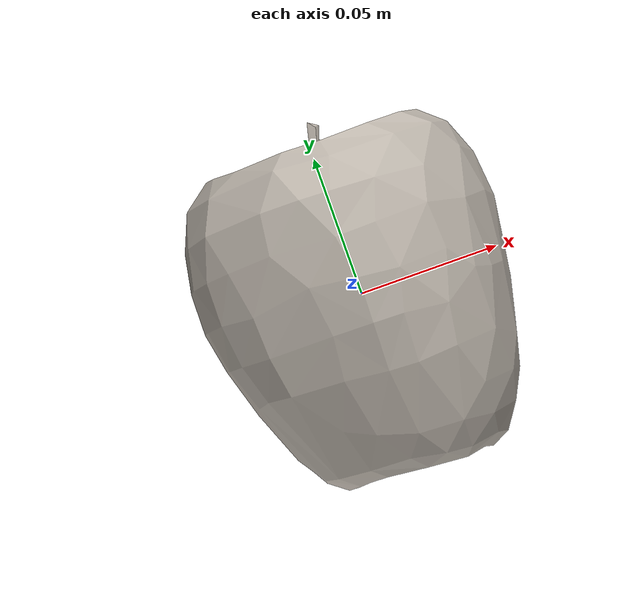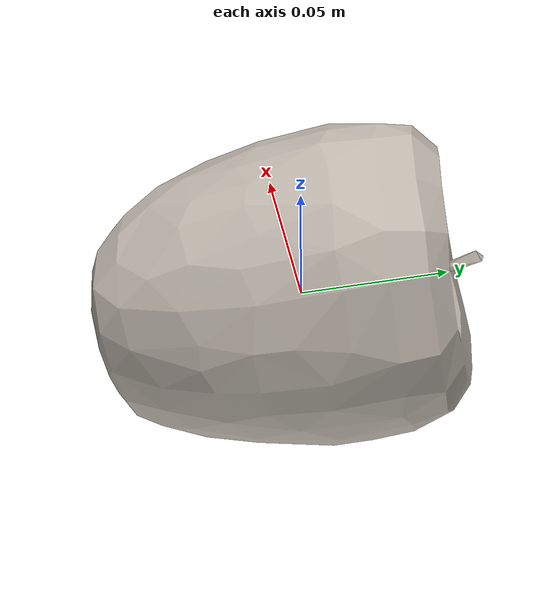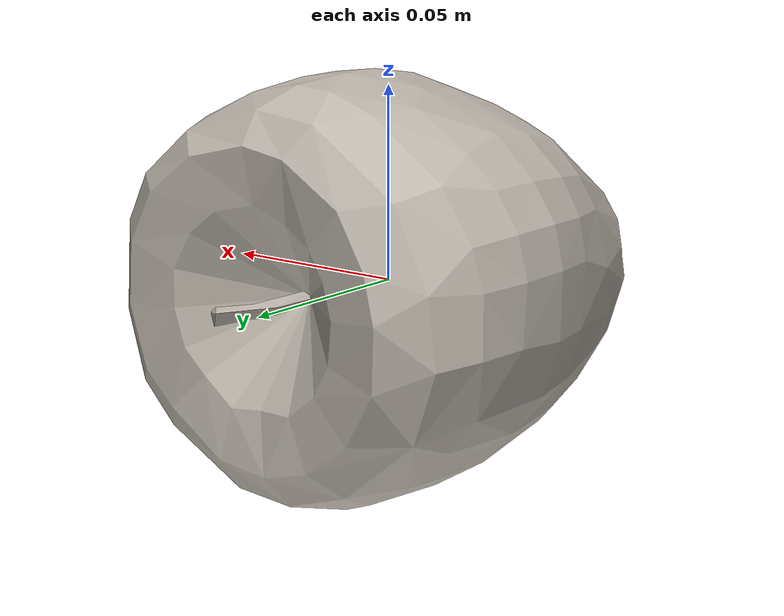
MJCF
<mujoco model="Apple_18">
  <compiler autolimits="true" boundmass="0.01" angle="radian"/>
  <default>
    <default class="/">
      <default class="__VISUAL_MJT__">
        <geom contype="0" conaffinity="0" group="0"/>
      </default>
      <default class="__STRUCTURAL_MJT__">
        <geom contype="8" conaffinity="15" group="4" friction="0.90000000000000002 0.90000000000000002 0.001" solref="0.025000000000000001 1" solimp="0.998 0.998 0.001"/>
      </default>
      <default class="__DYNAMIC_MJT__">
        <geom contype="1" conaffinity="15" group="4" friction="0.90000000000000002 0.90000000000000002 0.001" solref="0.025000000000000001 1" solimp="0.998 0.998 0.001"/>
      </default>
    </default>
  </default>
  <asset>
    <texture name="Apple2_Mat3" type="2d" file="Apple2_AlbedoTransparency3.png"/>
    <material name="material_Apple2_Mat3" class="/" texture="Apple2_Mat3" specular="0.5" shininess="0.5" rgba="1 1 1 1"/>
    <mesh name="Apple_18_apple_b3" class="/" file="Apple_18_apple_b3/Apple_18_apple_b3.obj" scale="1 1 1"/>
  </asset>
  <worldbody>
    <body name="Apple_18">
      <joint name="Apple_18_free" class="/" type="free" pos="0 0 0" axis="0 0 1" stiffness="0" range="0 0" armature="0" damping="0.10000000000000001" frictionloss="0"/>
      <body name="Apple_18_apple_b3" pos="-0 0.00413 0" quat="1 0 0 0">
        <geom name="Apple_18_apple_b3" class="__VISUAL_MJT__" type="mesh" material="material_Apple2_Mat3" shellinertia="false" mesh="Apple_18_apple_b3"/>
        <geom name="Apple_18_PrimitiveCollider_0" class="__DYNAMIC_MJT__" type="capsule" size="0.054542139172554016 0.018081456422805786" rgba="0 1 0 1" pos="-0 -0.0041299611330032349 0" quat="0.70710678118654757 0.70710678118654746 0 0"/>
      </body>
    </body>
  </worldbody>
</mujoco>
